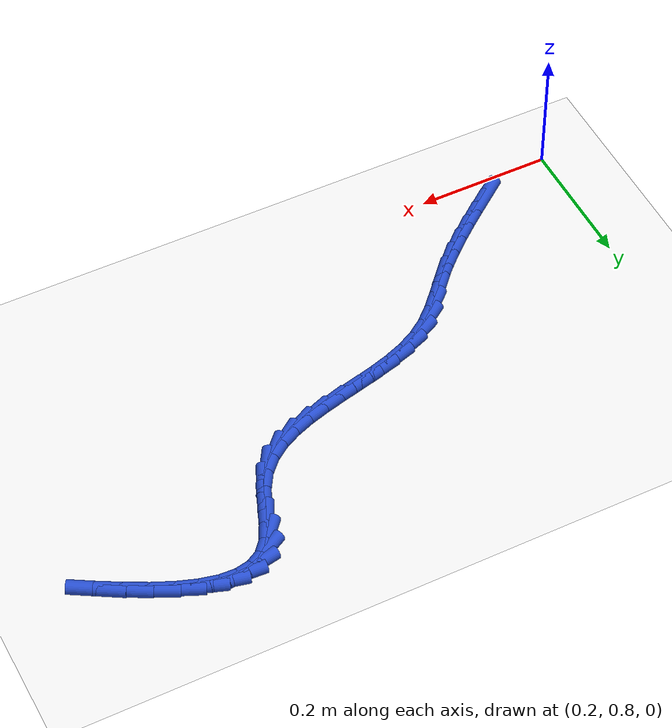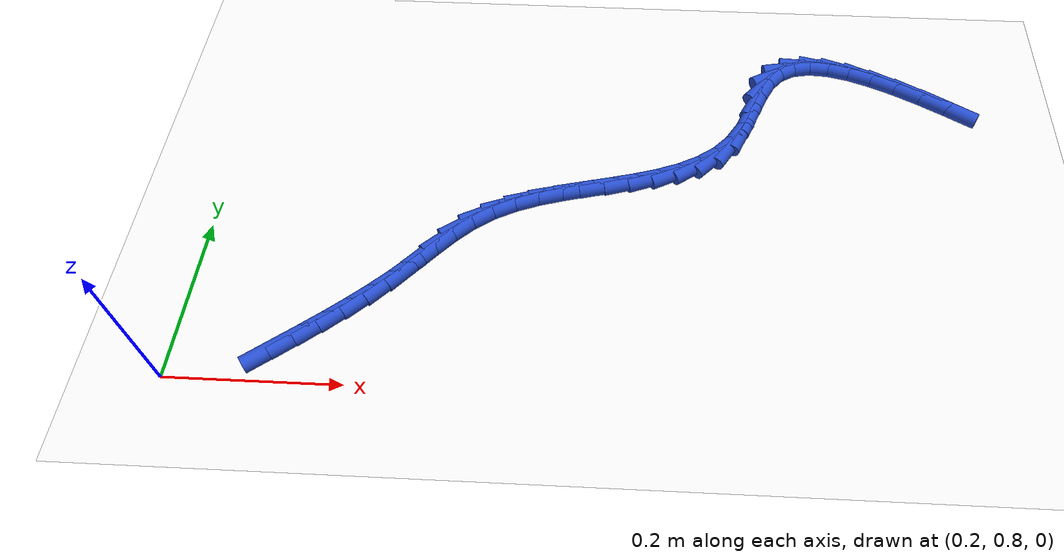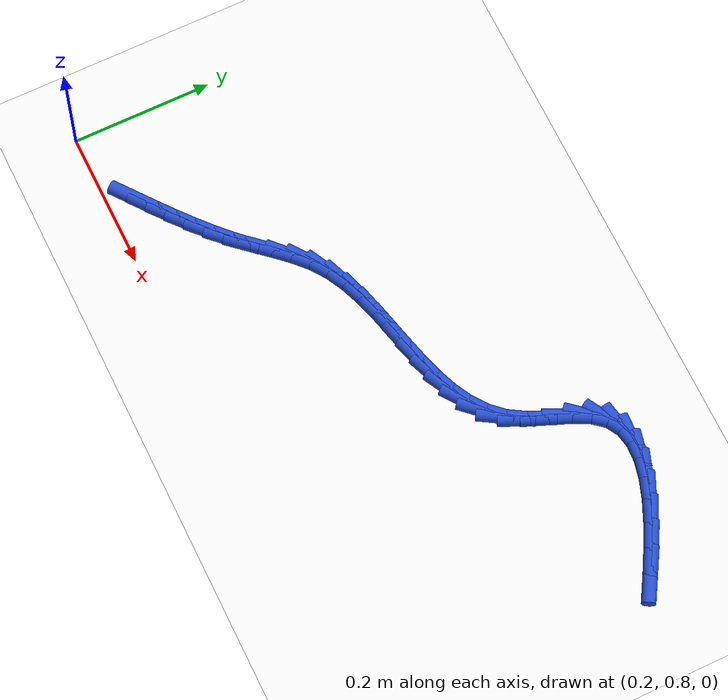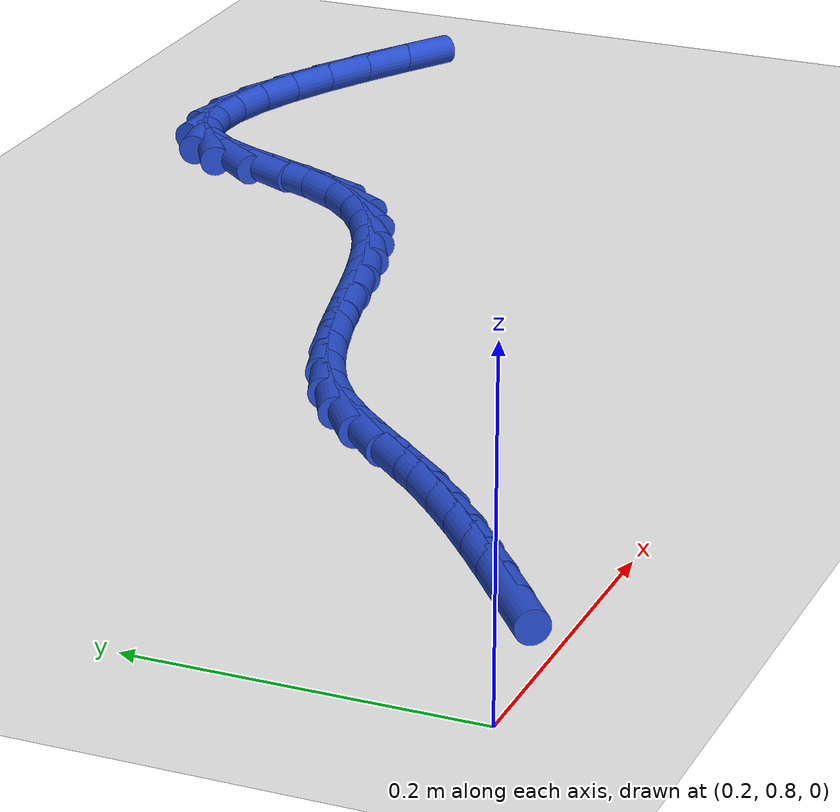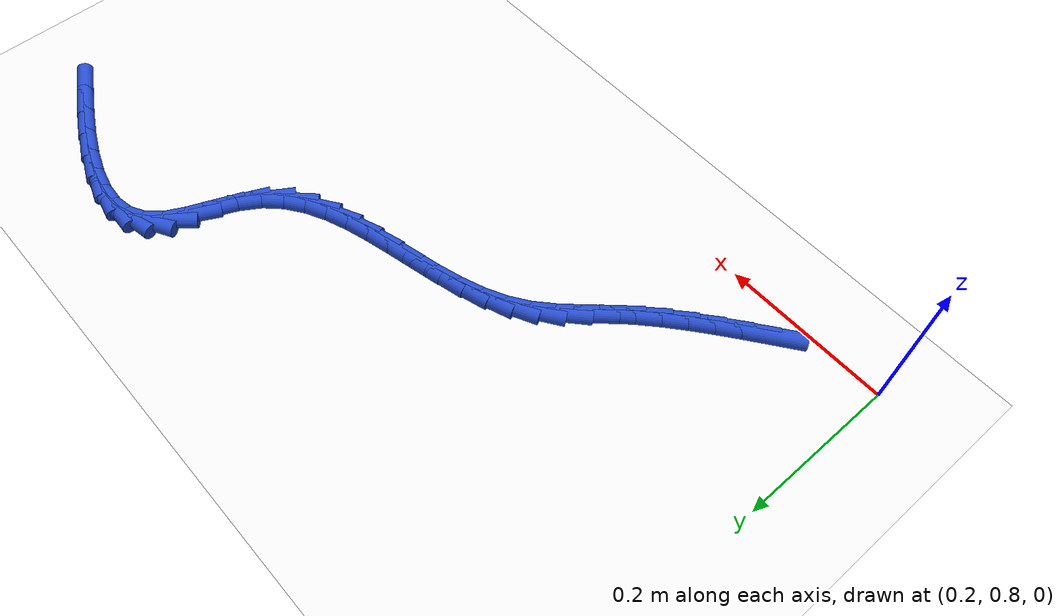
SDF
<sdf version="1.6">
 <world name="default">
  <model name="ground_plane">
   <static>1</static>
   <link name="link">
    <collision name="collision">
     <geometry><plane><normal>0 0 1</normal><size>100 100</size></plane></geometry>
     <surface><friction><ode><mu>100</mu><mu2>50</mu2></ode></friction></surface>
    </collision>
    <visual name="visual">
     <cast_shadows>0</cast_shadows>
     <geometry><plane><normal>0 0 1</normal><size>100 100</size></plane></geometry>
     <material>
      <script><uri>file://media/materials/scripts/gazebo.material</uri><name>Gazebo/WhiteGlow</name></script>
     </material>
    </visual>
   </link>
  </model>
  <model name="line">
   <link name="link_33">
    <pose>0.32022501853291413 0.8378164220010559 0.01 0 1.57 0.6527360985399905</pose>
    <collision name="collision">
     <geometry><cylinder><radius>0.01</radius><length>0.08</length></cylinder></geometry>
    </collision>
    <visual name="visual">
     <material>
      <script><name>Gazebo/Blue</name><uri>file://media/materials/scripts/gazebo.material</uri></script>
     </material>
     <geometry><cylinder><radius>0.01</radius><length>0.08</length></cylinder></geometry>
    </visual>
   </link>
   <link name="link_34">
    <pose>0.3434266513583301 0.8555547832337383 0.01 0 1.57 0.666445452769485</pose>
    <collision name="collision">
     <geometry><cylinder><radius>0.01</radius><length>0.08</length></cylinder></geometry>
    </collision>
    <visual name="visual">
     <material>
      <script><name>Gazebo/Blue</name><uri>file://media/materials/scripts/gazebo.material</uri></script>
     </material>
     <geometry><cylinder><radius>0.01</radius><length>0.08</length></cylinder></geometry>
    </visual>
   </link>
   <link name="link_35">
    <pose>0.36639490979901185 0.873618968910598 0.01 0 1.57 0.6886190538065011</pose>
    <collision name="collision">
     <geometry><cylinder><radius>0.01</radius><length>0.08</length></cylinder></geometry>
    </collision>
    <visual name="visual">
     <material>
      <script><name>Gazebo/Blue</name><uri>file://media/materials/scripts/gazebo.material</uri></script>
     </material>
     <geometry><cylinder><radius>0.01</radius><length>0.08</length></cylinder></geometry>
    </visual>
   </link>
   <link name="link_36">
    <pose>0.38892560870428217 0.8921621200187818 0.01 0 1.57 0.7194098844265059</pose>
    <collision name="collision">
     <geometry><cylinder><radius>0.01</radius><length>0.08</length></cylinder></geometry>
    </collision>
    <visual name="visual">
     <material>
      <script><name>Gazebo/Blue</name><uri>file://media/materials/scripts/gazebo.material</uri></script>
     </material>
     <geometry><cylinder><radius>0.01</radius><length>0.08</length></cylinder></geometry>
    </visual>
   </link>
   <link name="link_37">
    <pose>0.41081456292346313 0.9113373775454356 0.01 0 1.57 0.7590036536996266</pose>
    <collision name="collision">
     <geometry><cylinder><radius>0.01</radius><length>0.08</length></cylinder></geometry>
    </collision>
    <visual name="visual">
     <material>
      <script><name>Gazebo/Blue</name><uri>file://media/materials/scripts/gazebo.material</uri></script>
     </material>
     <geometry><cylinder><radius>0.01</radius><length>0.08</length></cylinder></geometry>
    </visual>
   </link>
   <link name="link_38">
    <pose>0.4318575873058772 0.9312978824777056 0.01 0 1.57 0.8073656967837953</pose>
    <collision name="collision">
     <geometry><cylinder><radius>0.01</radius><length>0.08</length></cylinder></geometry>
    </collision>
    <visual name="visual">
     <material>
      <script><name>Gazebo/Blue</name><uri>file://media/materials/scripts/gazebo.material</uri></script>
     </material>
     <geometry><cylinder><radius>0.01</radius><length>0.08</length></cylinder></geometry>
    </visual>
   </link>
   <link name="link_39">
    <pose>0.4518541055050259 0.9521928298354162 0.01 0 1.57 0.8433917566804576</pose>
    <collision name="collision">
     <geometry><cylinder><radius>0.01</radius><length>0.08</length></cylinder></geometry>
    </collision>
    <visual name="visual">
     <material>
      <script><name>Gazebo/Blue</name><uri>file://media/materials/scripts/gazebo.material</uri></script>
     </material>
     <geometry><cylinder><radius>0.01</radius><length>0.08</length></cylinder></geometry>
    </visual>
   </link>
   <link name="link_40">
    <pose>0.4710175889915194 0.9737186831863092 0.01 0 1.57 0.8263139130859298</pose>
    <collision name="collision">
     <geometry><cylinder><radius>0.01</radius><length>0.08</length></cylinder></geometry>
    </collision>
    <visual name="visual">
     <material>
      <script><name>Gazebo/Blue</name><uri>file://media/materials/scripts/gazebo.material</uri></script>
     </material>
     <geometry><cylinder><radius>0.01</radius><length>0.08</length></cylinder></geometry>
    </visual>
   </link>
   <link name="link_41">
    <pose>0.49035376507891293 0.9947056314231364 0.01 0 1.57 0.7496333584018579</pose>
    <collision name="collision">
     <geometry><cylinder><radius>0.01</radius><length>0.08</length></cylinder></geometry>
    </collision>
    <visual name="visual">
     <material>
      <script><name>Gazebo/Blue</name><uri>file://media/materials/scripts/gazebo.material</uri></script>
     </material>
     <geometry><cylinder><radius>0.01</radius><length>0.08</length></cylinder></geometry>
    </visual>
   </link>
   <link name="link_42">
    <pose>0.5109577489463684 1.013886124248821 0.01 0 1.57 0.6141857565335127</pose>
    <collision name="collision">
     <geometry><cylinder><radius>0.01</radius><length>0.08</length></cylinder></geometry>
    </collision>
    <visual name="visual">
     <material>
      <script><name>Gazebo/Blue</name><uri>file://media/materials/scripts/gazebo.material</uri></script>
     </material>
     <geometry><cylinder><radius>0.01</radius><length>0.08</length></cylinder></geometry>
    </visual>
   </link>
   <link name="link_43">
    <pose>0.5338774827811377 1.0300483785491392 0.01 0 1.57 0.4709693728344743</pose>
    <collision name="collision">
     <geometry><cylinder><radius>0.01</radius><length>0.08</length></cylinder></geometry>
    </collision>
    <visual name="visual">
     <material>
      <script><name>Gazebo/Blue</name><uri>file://media/materials/scripts/gazebo.material</uri></script>
     </material>
     <geometry><cylinder><radius>0.01</radius><length>0.08</length></cylinder></geometry>
    </visual>
   </link>
   <link name="link_44">
    <pose>0.5593030720194687 1.0429947325749651 0.01 0 1.57 0.3636248641162891</pose>
    <collision name="collision">
     <geometry><cylinder><radius>0.01</radius><length>0.08</length></cylinder></geometry>
    </collision>
    <visual name="visual">
     <material>
      <script><name>Gazebo/Blue</name><uri>file://media/materials/scripts/gazebo.material</uri></script>
     </material>
     <geometry><cylinder><radius>0.01</radius><length>0.08</length></cylinder></geometry>
    </visual>
   </link>
   <link name="link_45">
    <pose>0.5866767148247114 1.0534116890101701 0.01 0 1.57 0.2908831301023856</pose>
    <collision name="collision">
     <geometry><cylinder><radius>0.01</radius><length>0.08</length></cylinder></geometry>
    </collision>
    <visual name="visual">
     <material>
      <script><name>Gazebo/Blue</name><uri>file://media/materials/scripts/gazebo.material</uri></script>
     </material>
     <geometry><cylinder><radius>0.01</radius><length>0.08</length></cylinder></geometry>
    </visual>
   </link>
   <link name="link_46">
    <pose>0.6154155519577993 1.0620153730129664 0.01 0 1.57 0.2489994214945915</pose>
    <collision name="collision">
     <geometry><cylinder><radius>0.01</radius><length>0.08</length></cylinder></geometry>
    </collision>
    <visual name="visual">
     <material>
      <script><name>Gazebo/Blue</name><uri>file://media/materials/scripts/gazebo.material</uri></script>
     </material>
     <geometry><cylinder><radius>0.01</radius><length>0.08</length></cylinder></geometry>
    </visual>
   </link>
   <link name="link_47">
    <pose>0.6449367241796661 1.0695219097415671 0.01 0 1.57 0.23530824060760183</pose>
    <collision name="collision">
     <geometry><cylinder><radius>0.01</radius><length>0.08</length></cylinder></geometry>
    </collision>
    <visual name="visual">
     <material>
      <script><name>Gazebo/Blue</name><uri>file://media/materials/scripts/gazebo.material</uri></script>
     </material>
     <geometry><cylinder><radius>0.01</radius><length>0.08</length></cylinder></geometry>
    </visual>
   </link>
   <link name="link_48">
    <pose>0.6746573722512452 1.0766474243541837 0.01 0 1.57 0.24902645166853424</pose>
    <collision name="collision">
     <geometry><cylinder><radius>0.01</radius><length>0.08</length></cylinder></geometry>
    </collision>
    <visual name="visual">
     <material>
      <script><name>Gazebo/Blue</name><uri>file://media/materials/scripts/gazebo.material</uri></script>
     </material>
     <geometry><cylinder><radius>0.01</radius><length>0.08</length></cylinder></geometry>
    </visual>
   </link>
   <link name="link_49">
    <pose>0.70399463693347 1.084108042009029 0.01 0 1.57 0.2914742317144534</pose>
    <collision name="collision">
     <geometry><cylinder><radius>0.01</radius><length>0.08</length></cylinder></geometry>
    </collision>
    <visual name="visual">
     <material>
      <script><name>Gazebo/Blue</name><uri>file://media/materials/scripts/gazebo.material</uri></script>
     </material>
     <geometry><cylinder><radius>0.01</radius><length>0.08</length></cylinder></geometry>
    </visual>
   </link>
   <link name="link_50">
    <pose>0.7323656589872739 1.092619887864315 0.01 0 1.57 0.3659740493499417</pose>
    <collision name="collision">
     <geometry><cylinder><radius>0.01</radius><length>0.08</length></cylinder></geometry>
    </collision>
    <visual name="visual">
     <material>
      <script><name>Gazebo/Blue</name><uri>file://media/materials/scripts/gazebo.material</uri></script>
     </material>
     <geometry><cylinder><radius>0.01</radius><length>0.08</length></cylinder></geometry>
    </visual>
   </link>
   <link name="link_51">
    <pose>0.7591875791735904 1.102899087078254 0.01 0 1.57 0.4770900159526874</pose>
    <collision name="collision">
     <geometry><cylinder><radius>0.01</radius><length>0.08</length></cylinder></geometry>
    </collision>
    <visual name="visual">
     <material>
      <script><name>Gazebo/Blue</name><uri>file://media/materials/scripts/gazebo.material</uri></script>
     </material>
     <geometry><cylinder><radius>0.01</radius><length>0.08</length></cylinder></geometry>
    </visual>
   </link>
   <link name="link_52">
    <pose>0.7838775382533529 1.1156617648090588 0.01 0 1.57 0.6282115546998763</pose>
    <collision name="collision">
     <geometry><cylinder><radius>0.01</radius><length>0.08</length></cylinder></geometry>
    </collision>
    <visual name="visual">
     <material>
      <script><name>Gazebo/Blue</name><uri>file://media/materials/scripts/gazebo.material</uri></script>
     </material>
     <geometry><cylinder><radius>0.01</radius><length>0.08</length></cylinder></geometry>
    </visual>
   </link>
   <link name="link_53">
    <pose>0.805852676987495 1.131624046214941 0.01 0 1.57 0.8165263877236337</pose>
    <collision name="collision">
     <geometry><cylinder><radius>0.01</radius><length>0.08</length></cylinder></geometry>
    </collision>
    <visual name="visual">
     <material>
      <script><name>Gazebo/Blue</name><uri>file://media/materials/scripts/gazebo.material</uri></script>
     </material>
     <geometry><cylinder><radius>0.01</radius><length>0.08</length></cylinder></geometry>
    </visual>
   </link>
   <link name="link_54">
    <pose>0.8245301361369501 1.1515020564541134 0.01 0 1.57 1.0233464286361933</pose>
    <collision name="collision">
     <geometry><cylinder><radius>0.01</radius><length>0.08</length></cylinder></geometry>
    </collision>
    <visual name="visual">
     <material>
      <script><name>Gazebo/Blue</name><uri>file://media/materials/scripts/gazebo.material</uri></script>
     </material>
     <geometry><cylinder><radius>0.01</radius><length>0.08</length></cylinder></geometry>
    </visual>
   </link>
   <link name="link_55">
    <pose>0.8394029459800585 1.175899630236961 0.01 0 1.57 1.1618448366143228</pose>
    <collision name="collision">
     <geometry><cylinder><radius>0.01</radius><length>0.08</length></cylinder></geometry>
    </collision>
    <visual name="visual">
     <material>
      <script><name>Gazebo/Blue</name><uri>file://media/materials/scripts/gazebo.material</uri></script>
     </material>
     <geometry><cylinder><radius>0.01</radius><length>0.08</length></cylinder></geometry>
    </visual>
   </link>
   <link name="link_56">
    <pose>0.8513245303279926 1.2034076866006225 0.01 0 1.57 1.1899298419403797</pose>
    <collision name="collision">
     <geometry><cylinder><radius>0.01</radius><length>0.08</length></cylinder></geometry>
    </collision>
    <visual name="visual">
     <material>
      <script><name>Gazebo/Blue</name><uri>file://media/materials/scripts/gazebo.material</uri></script>
     </material>
     <geometry><cylinder><radius>0.01</radius><length>0.08</length></cylinder></geometry>
    </visual>
   </link>
   <link name="link_57">
    <pose>0.8623239652482819 1.2308775826128562 0.01 0 1.57 1.1060880423296635</pose>
    <collision name="collision">
     <geometry><cylinder><radius>0.01</radius><length>0.08</length></cylinder></geometry>
    </collision>
    <visual name="visual">
     <material>
      <script><name>Gazebo/Blue</name><uri>file://media/materials/scripts/gazebo.material</uri></script>
     </material>
     <geometry><cylinder><radius>0.01</radius><length>0.08</length></cylinder></geometry>
    </visual>
   </link>
   <link name="link_58">
    <pose>0.874469021169373 1.2551034209634182 0.01 0 1.57 0.8653335721720171</pose>
    <collision name="collision">
     <geometry><cylinder><radius>0.01</radius><length>0.08</length></cylinder></geometry>
    </collision>
    <visual name="visual">
     <material>
      <script><name>Gazebo/Blue</name><uri>file://media/materials/scripts/gazebo.material</uri></script>
     </material>
     <geometry><cylinder><radius>0.01</radius><length>0.08</length></cylinder></geometry>
    </visual>
   </link>
   <link name="link_59">
    <pose>0.8897334361672847 1.2730263441482286 0.01 0 1.57 0.5145881483495591</pose>
    <collision name="collision">
     <geometry><cylinder><radius>0.01</radius><length>0.08</length></cylinder></geometry>
    </collision>
    <visual name="visual">
     <material>
      <script><name>Gazebo/Blue</name><uri>file://media/materials/scripts/gazebo.material</uri></script>
     </material>
     <geometry><cylinder><radius>0.01</radius><length>0.08</length></cylinder></geometry>
    </visual>
   </link>
   <link name="link_60">
    <pose>0.9087058902195183 1.2837533308787963 0.01 0 1.57 0.19068192162095352</pose>
    <collision name="collision">
     <geometry><cylinder><radius>0.01</radius><length>0.08</length></cylinder></geometry>
    </collision>
    <visual name="visual">
     <material>
      <script><name>Gazebo/Blue</name><uri>file://media/materials/scripts/gazebo.material</uri></script>
     </material>
     <geometry><cylinder><radius>0.01</radius><length>0.08</length></cylinder></geometry>
    </visual>
   </link>
   <link name="link_61">
    <pose>0.9309199560286426 1.2880412470084266 0.01 0 1.57 -0.05414138122336819</pose>
    <collision name="collision">
     <geometry><cylinder><radius>0.01</radius><length>0.08</length></cylinder></geometry>
    </collision>
    <visual name="visual">
     <material>
      <script><name>Gazebo/Blue</name><uri>file://media/materials/scripts/gazebo.material</uri></script>
     </material>
     <geometry><cylinder><radius>0.01</radius><length>0.08</length></cylinder></geometry>
    </visual>
   </link>
   <link name="link_62">
    <pose>0.9558826994892865 1.2866884074853446 0.01 0 1.57 -0.22380009340404106</pose>
    <collision name="collision">
     <geometry><cylinder><radius>0.01</radius><length>0.08</length></cylinder></geometry>
    </collision>
    <visual name="visual">
     <material>
      <script><name>Gazebo/Blue</name><uri>file://media/materials/scripts/gazebo.material</uri></script>
     </material>
     <geometry><cylinder><radius>0.01</radius><length>0.08</length></cylinder></geometry>
    </visual>
   </link>
   <link name="link_63">
    <pose>0.9831011864960802 1.2804931272577766 0.01 0 1.57 -0.3396212861030843</pose>
    <collision name="collision">
     <geometry><cylinder><radius>0.01</radius><length>0.08</length></cylinder></geometry>
    </collision>
    <visual name="visual">
     <material>
      <script><name>Gazebo/Blue</name><uri>file://media/materials/scripts/gazebo.material</uri></script>
     </material>
     <geometry><cylinder><radius>0.01</radius><length>0.08</length></cylinder></geometry>
    </visual>
   </link>
   <link name="link_64">
    <pose>1.0120824829436514 1.2702537212739475 0.01 0 1.57 -0.41933488223553456</pose>
    <collision name="collision">
     <geometry><cylinder><radius>0.01</radius><length>0.08</length></cylinder></geometry>
    </collision>
    <visual name="visual">
     <material>
      <script><name>Gazebo/Blue</name><uri>file://media/materials/scripts/gazebo.material</uri></script>
     </material>
     <geometry><cylinder><radius>0.01</radius><length>0.08</length></cylinder></geometry>
    </visual>
   </link>
   <link name="link_65">
    <pose>1.04233365472663 1.256768504482083 0.01 0 1.57 -0.47438349199871194</pose>
    <collision name="collision">
     <geometry><cylinder><radius>0.01</radius><length>0.08</length></cylinder></geometry>
    </collision>
    <visual name="visual">
     <material>
      <script><name>Gazebo/Blue</name><uri>file://media/materials/scripts/gazebo.material</uri></script>
     </material>
     <geometry><cylinder><radius>0.01</radius><length>0.08</length></cylinder></geometry>
    </visual>
   </link>
   <link name="link_66">
    <pose>1.0733617677396448 1.2408357918304096 0.01 0 1.57 -0.511632845165431</pose>
    <collision name="collision">
     <geometry><cylinder><radius>0.01</radius><length>0.08</length></cylinder></geometry>
    </collision>
    <visual name="visual">
     <material>
      <script><name>Gazebo/Blue</name><uri>file://media/materials/scripts/gazebo.material</uri></script>
     </material>
     <geometry><cylinder><radius>0.01</radius><length>0.08</length></cylinder></geometry>
    </visual>
   </link>
   <link name="link_67">
    <pose>1.1046738878773246 1.2232538982671524 0.01 0 1.57 -0.5349845233337354</pose>
    <collision name="collision">
     <geometry><cylinder><radius>0.01</radius><length>0.08</length></cylinder></geometry>
    </collision>
    <visual name="visual">
     <material>
      <script><name>Gazebo/Blue</name><uri>file://media/materials/scripts/gazebo.material</uri></script>
     </material>
     <geometry><cylinder><radius>0.01</radius><length>0.08</length></cylinder></geometry>
    </visual>
   </link>
  </model>
 </world>
</sdf>
